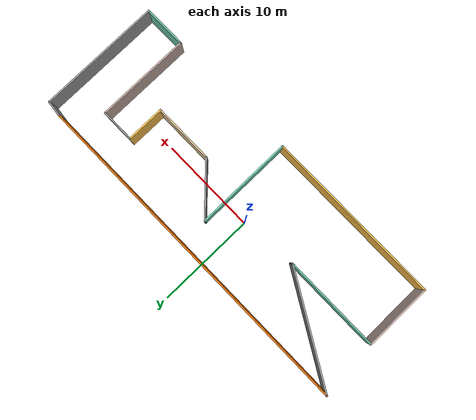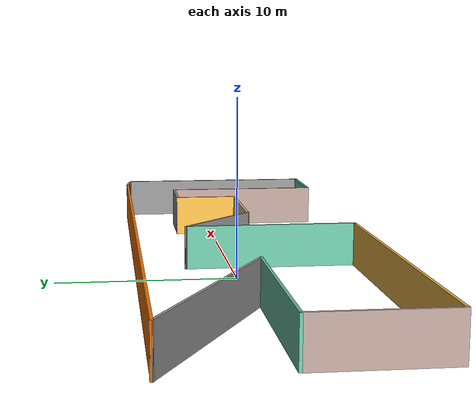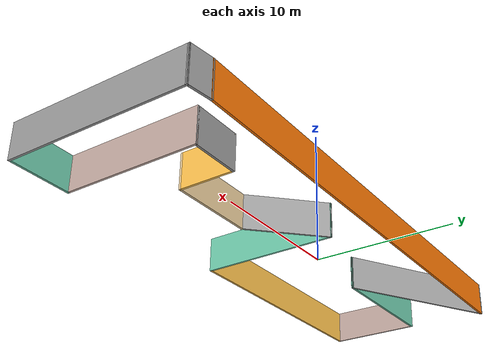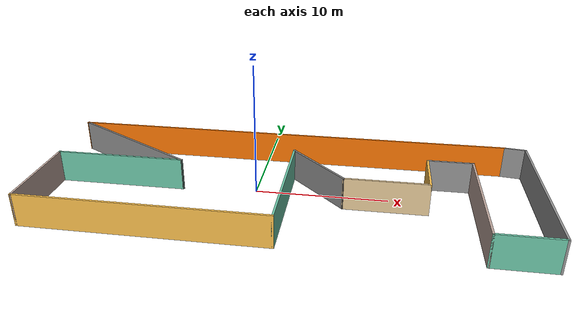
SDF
<?xml version='1.0'?>
<sdf version='1.6'>
  <model name='Building_model)_new'>
    <pose frame=''>2.27393 -0.901933 0 0 -0 0</pose>
    <link name='Wall_10'>
      <collision name='Wall_10_Collision'>
        <geometry>
          <box>
            <size>10 0.15 2.5</size>
          </box>
        </geometry>
        <pose frame=''>0 0 1.25 0 -0 0</pose>
      </collision>
      <visual name='Wall_10_Visual'>
        <pose frame=''>0 0 1.25 0 -0 0</pose>
        <geometry>
          <box>
            <size>10 0.15 2.5</size>
          </box>
        </geometry>
        <material>
          <script>
            <uri>file://media/materials/scripts/gazebo.material</uri>
            <name>Gazebo/Grey</name>
          </script>
          <ambient>0.435294 0.796078 0.67451 1</ambient>
        </material>
        <meta>
          <layer>0</layer>
        </meta>
      </visual>
      <pose frame=''>0.297043 -1.45794 0 0 -0 1.5708</pose>
    </link>
    <link name='Wall_11'>
      <collision name='Wall_11_Collision'>
        <geometry>
          <box>
            <size>6 0.15 2.5</size>
          </box>
        </geometry>
        <pose frame=''>0 0 1.25 0 -0 0</pose>
      </collision>
      <visual name='Wall_11_Visual'>
        <pose frame=''>0 0 1.25 0 -0 0</pose>
        <geometry>
          <box>
            <size>6 0.15 2.5</size>
          </box>
        </geometry>
        <material>
          <script>
            <uri>file://media/materials/scripts/gazebo.material</uri>
            <name>Gazebo/Grey</name>
          </script>
          <ambient>1 1 1 1</ambient>
        </material>
        <meta>
          <layer>0</layer>
        </meta>
      </visual>
      <pose frame=''>2.36533 1.39877 0 0 0 -0.785398</pose>
    </link>
    <link name='Wall_12'>
      <collision name='Wall_12_Collision'>
        <geometry>
          <box>
            <size>6.25 0.15 2.5</size>
          </box>
        </geometry>
        <pose frame=''>0 0 1.25 0 -0 0</pose>
      </collision>
      <visual name='Wall_12_Visual'>
        <pose frame=''>0 0 1.25 0 -0 0</pose>
        <geometry>
          <box>
            <size>6.25 0.15 2.5</size>
          </box>
        </geometry>
        <material>
          <script>
            <uri>file://media/materials/scripts/gazebo.material</uri>
            <name>Gazebo/Grey</name>
          </script>
          <ambient>0.921569 0.807843 0.615686 1</ambient>
        </material>
        <meta>
          <layer>0</layer>
        </meta>
      </visual>
      <pose frame=''>7.48362 -0.669513 0 0 -0 0</pose>
    </link>
    <link name='Wall_13'>
      <collision name='Wall_13_Collision'>
        <geometry>
          <box>
            <size>4 0.15 2.5</size>
          </box>
        </geometry>
        <pose frame=''>0 0 1.25 0 -0 0</pose>
      </collision>
      <visual name='Wall_13_Visual'>
        <pose frame=''>0 0 1.25 0 -0 0</pose>
        <geometry>
          <box>
            <size>4 0.15 2.5</size>
          </box>
        </geometry>
        <material>
          <script>
            <uri>file://media/materials/scripts/gazebo.material</uri>
            <name>Gazebo/Grey</name>
          </script>
          <ambient>1 0.764706 0.305882 1</ambient>
        </material>
        <meta>
          <layer>0</layer>
        </meta>
      </visual>
      <pose frame=''>10.5336 1.25549 0 0 -0 1.5708</pose>
    </link>
    <link name='Wall_14'>
      <collision name='Wall_14_Collision'>
        <geometry>
          <box>
            <size>3.5 0.15 2.5</size>
          </box>
        </geometry>
        <pose frame=''>0 0 1.25 0 -0 0</pose>
      </collision>
      <visual name='Wall_14_Visual'>
        <pose frame=''>0 0 1.25 0 -0 0</pose>
        <geometry>
          <box>
            <size>3.5 0.15 2.5</size>
          </box>
        </geometry>
        <material>
          <script>
            <uri>file://media/materials/scripts/gazebo.material</uri>
            <name>Gazebo/Grey</name>
          </script>
          <ambient>1 1 1 1</ambient>
        </material>
        <meta>
          <layer>0</layer>
        </meta>
      </visual>
      <pose frame=''>12.2086 3.18049 0 0 -0 0</pose>
    </link>
    <link name='Wall_15'>
      <collision name='Wall_15_Collision'>
        <geometry>
          <box>
            <size>9.75 0.15 2.5</size>
          </box>
        </geometry>
        <pose frame=''>0 0 1.25 0 -0 0</pose>
      </collision>
      <visual name='Wall_15_Visual'>
        <pose frame=''>0 0 1.25 0 -0 0</pose>
        <geometry>
          <box>
            <size>9.75 0.15 2.5</size>
          </box>
        </geometry>
        <material>
          <script>
            <uri>file://media/materials/scripts/gazebo.material</uri>
            <name>Gazebo/Grey</name>
          </script>
          <ambient>0.760784 0.662745 0.627451 1</ambient>
        </material>
        <meta>
          <layer>0</layer>
        </meta>
      </visual>
      <pose frame=''>13.8836 -1.61951 0 0 0 -1.5708</pose>
    </link>
    <link name='Wall_16'>
      <collision name='Wall_16_Collision'>
        <geometry>
          <box>
            <size>4.5 0.15 2.5</size>
          </box>
        </geometry>
        <pose frame=''>0 0 1.25 0 -0 0</pose>
      </collision>
      <visual name='Wall_16_Visual'>
        <pose frame=''>0 0 1.25 0 -0 0</pose>
        <geometry>
          <box>
            <size>4.5 0.15 2.5</size>
          </box>
        </geometry>
        <material>
          <script>
            <uri>file://media/materials/scripts/gazebo.material</uri>
            <name>Gazebo/Grey</name>
          </script>
          <ambient>0.435294 0.796078 0.67451 1</ambient>
        </material>
        <meta>
          <layer>0</layer>
        </meta>
      </visual>
      <pose frame=''>16.0586 -6.41951 0 0 -0 0</pose>
    </link>
    <link name='Wall_17'>
      <collision name='Wall_17_Collision'>
        <geometry>
          <box>
            <size>12.75 0.15 2.5</size>
          </box>
        </geometry>
        <pose frame=''>0 0 1.25 0 -0 0</pose>
      </collision>
      <visual name='Wall_17_Visual'>
        <pose frame=''>0 0 1.25 0 -0 0</pose>
        <geometry>
          <box>
            <size>12.75 0.15 2.5</size>
          </box>
        </geometry>
        <material>
          <script>
            <uri>file://media/materials/scripts/gazebo.material</uri>
            <name>Gazebo/Grey</name>
          </script>
          <ambient>1 1 1 1</ambient>
        </material>
        <meta>
          <layer>0</layer>
        </meta>
      </visual>
      <pose frame=''>18.2336 -0.119513 0 0 -0 1.5708</pose>
    </link>
    <link name='Wall_18'>
      <collision name='Wall_18_Collision'>
        <geometry>
          <box>
            <size>0.15 0.15 2.5</size>
          </box>
        </geometry>
        <pose frame=''>0 0 1.25 0 -0 0</pose>
      </collision>
      <visual name='Wall_18_Visual'>
        <pose frame=''>0 0 1.25 0 -0 0</pose>
        <geometry>
          <box>
            <size>0.15 0.15 2.5</size>
          </box>
        </geometry>
        <material>
          <script>
            <uri>file://media/materials/scripts/gazebo.material</uri>
            <name>Gazebo/Grey</name>
          </script>
          <ambient>1 1 1 1</ambient>
        </material>
        <meta>
          <layer>0</layer>
        </meta>
      </visual>
      <pose frame=''>18.2336 6.18049 0 0 -0 0</pose>
    </link>
    <link name='Wall_19'>
      <collision name='Wall_19_Collision'>
        <geometry>
          <box>
            <size>1.76291 0.15 2.5</size>
          </box>
        </geometry>
        <pose frame=''>0 0 1.25 0 -0 0</pose>
      </collision>
      <visual name='Wall_19_Visual'>
        <pose frame=''>0 0 1.25 0 -0 0</pose>
        <geometry>
          <box>
            <size>1.76291 0.15 2.5</size>
          </box>
        </geometry>
        <material>
          <script>
            <uri>file://media/materials/scripts/gazebo.material</uri>
            <name>Gazebo/Grey</name>
          </script>
          <ambient>1 1 1 1</ambient>
        </material>
        <meta>
          <layer>0</layer>
        </meta>
      </visual>
      <pose frame=''>17.4341 6.28627 0 0 -0 3.01004</pose>
    </link>
    <link name='Wall_5'>
      <collision name='Wall_5_Collision'>
        <geometry>
          <box>
            <size>35 0.15 2.5</size>
          </box>
        </geometry>
        <pose frame=''>0 0 1.25 0 -0 0</pose>
      </collision>
      <visual name='Wall_5_Visual'>
        <pose frame=''>0 0 1.25 0 -0 0</pose>
        <geometry>
          <box>
            <size>35 0.15 2.5</size>
          </box>
        </geometry>
        <material>
          <script>
            <uri>file://media/materials/scripts/gazebo.material</uri>
            <name>Gazebo/Grey</name>
          </script>
          <ambient>0.996078 0.47451 0.0196078 1</ambient>
        </material>
        <meta>
          <layer>0</layer>
        </meta>
      </visual>
      <pose frame=''>-0.790358 6.39206 0 0 -0 3.14159</pose>
    </link>
    <link name='Wall_6'>
      <collision name='Wall_6_Collision'>
        <geometry>
          <box>
            <size>12 0.15 2.5</size>
          </box>
        </geometry>
        <pose frame=''>0 0 1.25 0 -0 0</pose>
      </collision>
      <visual name='Wall_6_Visual'>
        <pose frame=''>0 0 1.25 0 -0 0</pose>
        <geometry>
          <box>
            <size>12 0.15 2.5</size>
          </box>
        </geometry>
        <material>
          <script>
            <uri>file://media/materials/scripts/gazebo.material</uri>
            <name>Gazebo/Grey</name>
          </script>
          <ambient>1 1 1 1</ambient>
        </material>
        <meta>
          <layer>0</layer>
        </meta>
      </visual>
      <pose frame=''>-13.0842 3.42956 0 0 0 -0.523599</pose>
    </link>
    <link name='Wall_7'>
      <collision name='Wall_7_Collision'>
        <geometry>
          <box>
            <size>10 0.15 2.5</size>
          </box>
        </geometry>
        <pose frame=''>0 0 1.25 0 -0 0</pose>
      </collision>
      <visual name='Wall_7_Visual'>
        <pose frame=''>0 0 1.25 0 -0 0</pose>
        <geometry>
          <box>
            <size>10 0.15 2.5</size>
          </box>
        </geometry>
        <material>
          <script>
            <uri>file://media/materials/scripts/gazebo.material</uri>
            <name>Gazebo/Grey</name>
          </script>
          <ambient>0.435294 0.796078 0.67451 1</ambient>
        </material>
        <meta>
          <layer>0</layer>
        </meta>
      </visual>
      <pose frame=''>-12.878 0.467061 0 0 -0 3.14159</pose>
    </link>
    <link name='Wall_8'>
      <collision name='Wall_8_Collision'>
        <geometry>
          <box>
            <size>7 0.15 2.5</size>
          </box>
        </geometry>
        <pose frame=''>0 0 1.25 0 -0 0</pose>
      </collision>
      <visual name='Wall_8_Visual'>
        <pose frame=''>0 0 1.25 0 -0 0</pose>
        <geometry>
          <box>
            <size>7 0.15 2.5</size>
          </box>
        </geometry>
        <material>
          <script>
            <uri>file://media/materials/scripts/gazebo.material</uri>
            <name>Gazebo/Grey</name>
          </script>
          <ambient>0.760784 0.662745 0.627451 1</ambient>
        </material>
        <meta>
          <layer>0</layer>
        </meta>
      </visual>
      <pose frame=''>-17.803 -2.95794 0 0 0 -1.5708</pose>
    </link>
    <link name='Wall_9'>
      <collision name='Wall_9_Collision'>
        <geometry>
          <box>
            <size>18.25 0.15 2.5</size>
          </box>
        </geometry>
        <pose frame=''>0 0 1.25 0 -0 0</pose>
      </collision>
      <visual name='Wall_9_Visual'>
        <pose frame=''>0 0 1.25 0 -0 0</pose>
        <geometry>
          <box>
            <size>18.25 0.15 2.5</size>
          </box>
        </geometry>
        <material>
          <script>
            <uri>file://media/materials/scripts/gazebo.material</uri>
            <name>Gazebo/Grey</name>
          </script>
          <ambient>1 0.764706 0.305882 1</ambient>
        </material>
        <meta>
          <layer>0</layer>
        </meta>
      </visual>
      <pose frame=''>-8.75296 -6.38294 0 0 -0 0</pose>
    </link>
    <static>1</static>
  </model>
</sdf>
